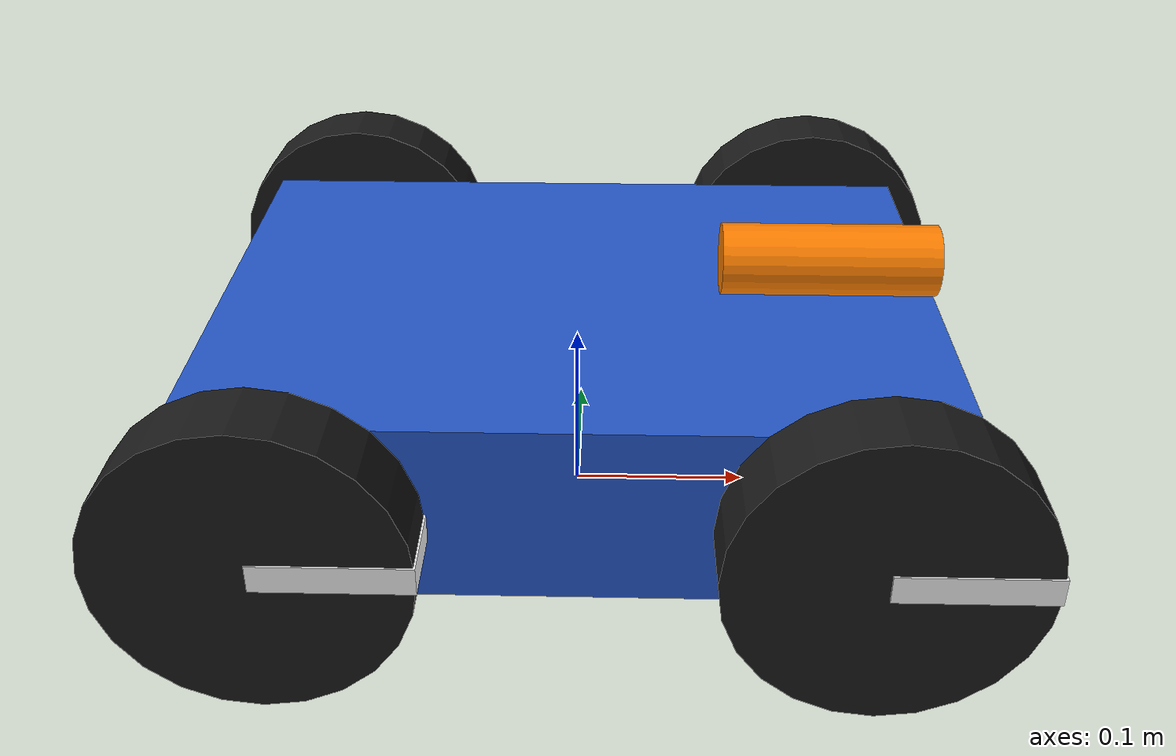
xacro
<?xml version="1.0"?>

<robot name="mecanum_robot" xmlns:xacro="http://www.ros.org/wiki/xacro">

  <xacro:include filename="$(find das_mr_r2c)/urdf/common.xacro"/>
  <xacro:include filename="$(find das_mr_r2c)/urdf/mecanum/mecanum.ros2_control.xacro"/>

  <xacro:property name="base_length"    value="0.40"/>
  <xacro:property name="base_width"     value="0.30"/>
  <xacro:property name="base_height"    value="0.10"/>
  <xacro:property name="wheel_radius"   value="0.08"/>
  <xacro:property name="wheel_width"    value="0.04"/>
  <xacro:property name="wheelbase"      value="0.30"/>
  <xacro:property name="wheel_track"    value="0.36"/>

  <link name="base_footprint"/>

  <link name="base_link">
    <visual>
      <geometry><box size="${base_length} ${base_width} ${base_height}"/></geometry>
      <material name="blue"/>
    </visual>
    <collision>
      <geometry><box size="${base_length} ${base_width} ${base_height}"/></geometry>
    </collision>
    <xacro:box_inertia m="5.0" x="${base_length}" y="${base_width}" z="${base_height}"/>
  </link>

  <joint name="base_joint" type="fixed">
    <parent link="base_footprint"/>
    <child link="base_link"/>
    <origin xyz="0 0 ${wheel_radius}" rpy="0 0 0"/>
  </joint>

  <link name="front_marker_link">
    <visual>
      <origin xyz="0 0 0" rpy="0 ${pi/2} 0"/>
      <geometry><cylinder radius="0.02" length="0.12"/></geometry>
      <material name="orange"/>
    </visual>
  </link>
  <joint name="front_marker_joint" type="fixed">
    <parent link="base_link"/>
    <child link="front_marker_link"/>
    <origin xyz="${base_length/2 - 0.06} 0 ${base_height/2 + 0.02}" rpy="0 0 0"/>
  </joint>

  <xacro:macro name="mecanum_wheel" params="prefix x_reflect y_reflect">
    <link name="${prefix}_wheel_link">
      <visual>
        <origin xyz="0 0 0" rpy="${pi/2} 0 0"/>
        <geometry><cylinder radius="${wheel_radius}" length="${wheel_width}"/></geometry>
        <material name="black"/>
      </visual>
      <visual>
        <origin xyz="${wheel_radius/2} 0 0" rpy="0 0 0"/>
        <geometry><box size="${wheel_radius} ${wheel_width + 0.002} 0.015"/></geometry>
        <material name="white"/>
      </visual>
      <collision>
        <origin xyz="0 0 0" rpy="${pi/2} 0 0"/>
        <geometry><cylinder radius="${wheel_radius}" length="${wheel_width}"/></geometry>
      </collision>
      <xacro:cylinder_inertia m="0.5" r="${wheel_radius}" h="${wheel_width}"/>
    </link>

    <joint name="${prefix}_wheel_joint" type="continuous">
      <parent link="base_link"/>
      <child link="${prefix}_wheel_link"/>
      <origin xyz="${x_reflect * wheelbase / 2} ${y_reflect * wheel_track / 2} 0" rpy="0 0 0"/>
      <axis xyz="0 1 0"/>
    </joint>
  </xacro:macro>

  <xacro:mecanum_wheel prefix="front_left"  x_reflect="1"  y_reflect="1"/>
  <xacro:mecanum_wheel prefix="front_right" x_reflect="1"  y_reflect="-1"/>
  <xacro:mecanum_wheel prefix="rear_left"   x_reflect="-1" y_reflect="1"/>
  <xacro:mecanum_wheel prefix="rear_right"  x_reflect="-1" y_reflect="-1"/>

  <xacro:mecanum_ros2_control name="MecanumMockSystem"/>

</robot>

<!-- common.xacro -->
<!-- Shared materials and inertia helpers (inertias are only cosmetic here,
     there is no physics simulation – the mock hardware just integrates commands). -->
<robot xmlns:xacro="http://www.ros.org/wiki/xacro">

  <material name="blue"><color rgba="0.15 0.35 0.8 1.0"/></material>
  <material name="black"><color rgba="0.1 0.1 0.1 1.0"/></material>
  <material name="grey"><color rgba="0.6 0.6 0.6 1.0"/></material>
  <material name="orange"><color rgba="1.0 0.5 0.0 1.0"/></material>
  <material name="white"><color rgba="0.95 0.95 0.95 1.0"/></material>

  <xacro:macro name="box_inertia" params="m x y z">
    <inertial>
      <mass value="${m}"/>
      <inertia ixx="${m*(y*y+z*z)/12}" ixy="0" ixz="0"
               iyy="${m*(x*x+z*z)/12}" iyz="0"
               izz="${m*(x*x+y*y)/12}"/>
    </inertial>
  </xacro:macro>

  <xacro:macro name="cylinder_inertia" params="m r h">
    <inertial>
      <mass value="${m}"/>
      <inertia ixx="${m*(3*r*r+h*h)/12}" ixy="0" ixz="0"
               iyy="${m*(3*r*r+h*h)/12}" iyz="0"
               izz="${m*r*r/2}"/>
    </inertial>
  </xacro:macro>

</robot>
